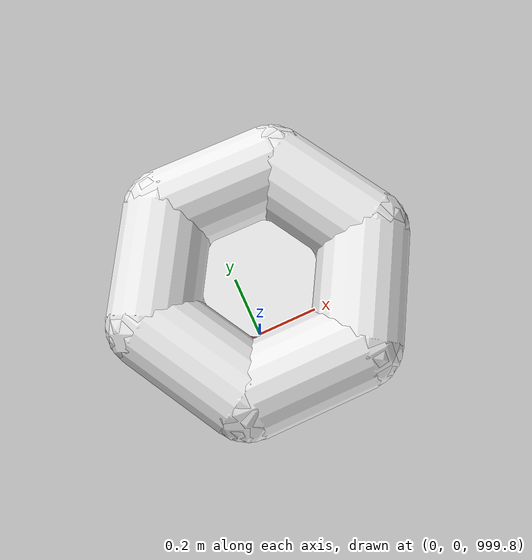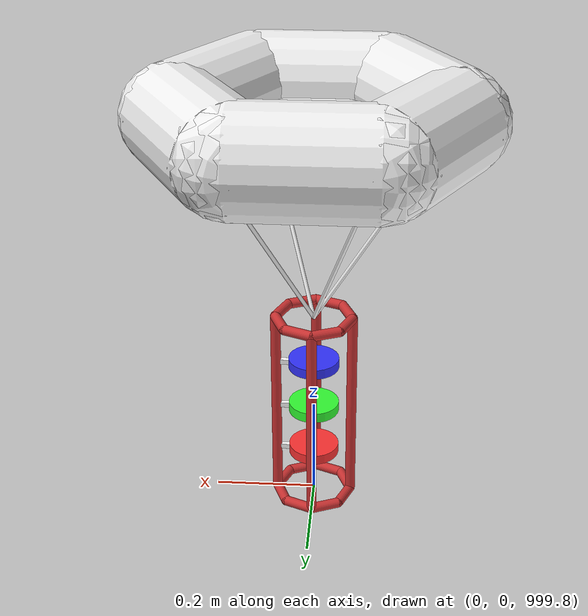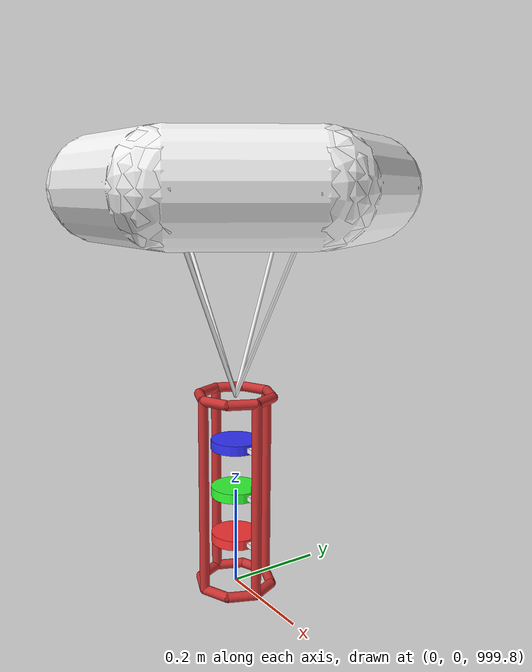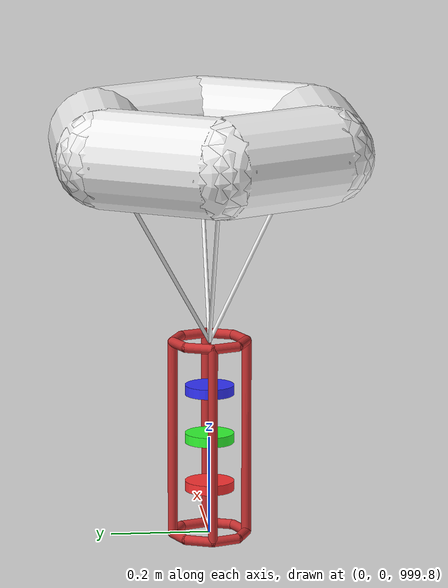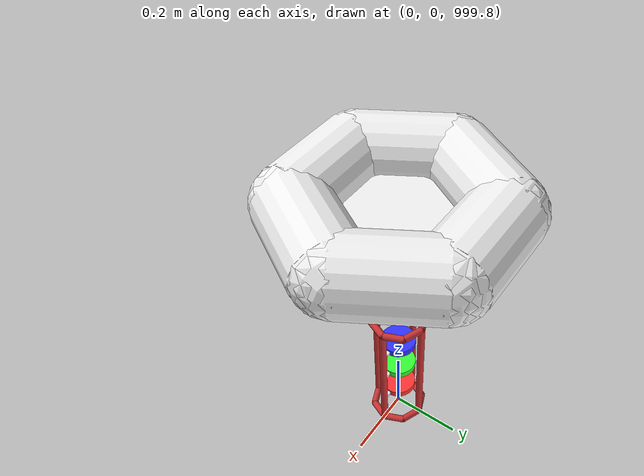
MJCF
<mujoco model="CanSatSolidChute">
  <compiler angle="degree" coordinate="local" inertiafromgeom="true"/>
  <option integrator="RK4" gravity="0 0 -9.81"/>

  <visual>
    <map znear="0.001"/>
    <quality shadowsize="4096"/>
  </visual>

  <asset>
    <texture type="skybox" builtin="gradient" rgb1="0.3 0.5 0.8" rgb2="0.1 0.2 0.4" width="512" height="3072"/>
    <material name="cansat_frame" shininess="0.7" specular="0.8" rgba="0.8 0.2 0.2 1"/>
    <material name="parachute_fabric" shininess="0.1" specular="0.1" rgba="0.95 0.95 0.95 0.9"/>
  </asset>

  <worldbody>
    <geom name="ground" type="plane" size="2000 2000 0.1" rgba="0.2 0.3 0.2 1"/>
    <light name="sun" directional="true" pos="0 -1 2" dir="0 1 -1" castshadow="true"/>

    <body name="cansat_body" pos="0 0 1000">
      <freejoint name="world_joint"/>

      <!-- CanSat "Cage" Frame -->
      <geom material="cansat_frame" type="capsule" fromto="0.075 0 -0.2 0.075 0 0.2" size="0.01"/><geom material="cansat_frame" type="capsule" fromto="-0.075 0 -0.2 -0.075 0 0.2" size="0.01"/><geom material="cansat_frame" type="capsule" fromto="0 0.075 -0.2 0 0.075 0.2" size="0.01"/><geom material="cansat_frame" type="capsule" fromto="0 -0.075 -0.2 0 -0.075 0.2" size="0.01"/><geom material="cansat_frame" type="capsule" fromto="0.075 0 0.2 0.053 0.053 0.2" size="0.01"/><geom material="cansat_frame" type="capsule" fromto="0.053 0.053 0.2 0 0.075 0.2" size="0.01"/><geom material="cansat_frame" type="capsule" fromto="0 0.075 0.2 -0.053 0.053 0.2" size="0.01"/><geom material="cansat_frame" type="capsule" fromto="-0.053 0.053 0.2 -0.075 0 0.2" size="0.01"/><geom material="cansat_frame" type="capsule" fromto="-0.075 0 0.2 -0.053 -0.053 0.2" size="0.01"/><geom material="cansat_frame" type="capsule" fromto="-0.053 -0.053 0.2 0 -0.075 0.2" size="0.01"/><geom material="cansat_frame" type="capsule" fromto="0 -0.075 0.2 0.053 -0.053 0.2" size="0.01"/><geom material="cansat_frame" type="capsule" fromto="0.053 -0.053 0.2 0.075 0 0.2" size="0.01"/><geom material="cansat_frame" type="capsule" fromto="0.075 0 -0.2 0.053 0.053 -0.2" size="0.01"/><geom material="cansat_frame" type="capsule" fromto="0.053 0.053 -0.2 0 0.075 -0.2" size="0.01"/><geom material="cansat_frame" type="capsule" fromto="0 0.075 -0.2 -0.053 0.053 -0.2" size="0.01"/><geom material="cansat_frame" type="capsule" fromto="-0.053 0.053 -0.2 -0.075 0 -0.2" size="0.01"/><geom material="cansat_frame" type="capsule" fromto="-0.075 0 -0.2 -0.053 -0.053 -0.2" size="0.01"/><geom material="cansat_frame" type="capsule" fromto="-0.053 -0.053 -0.2 0 -0.075 -0.2" size="0.01"/><geom material="cansat_frame" type="capsule" fromto="0 -0.075 -0.2 0.053 -0.053 -0.2" size="0.01"/><geom material="cansat_frame" type="capsule" fromto="0.053 -0.053 -0.2 0.075 0 -0.2" size="0.01"/>

      <!-- Reaction Wheels -->
      <body name="rw_roll" pos="0 0 -0.1"><joint name="joint_x_roll" type="hinge" axis="1 0 0"/><geom type="cylinder" size="0.05 0.01" rgba="1 0.2 0.2 1"/><geom type="box" size="0.05 0.005 0.005" pos="0.025 0 0" rgba="1 1 1 1"/></body>
      <body name="rw_pitch" pos="0 0 0"><joint name="joint_y_pitch" type="hinge" axis="0 1 0"/><geom type="cylinder" size="0.05 0.01" rgba="0.2 1 0.2 1"/><geom type="box" size="0.05 0.005 0.005" pos="0.025 0 0" rgba="1 1 1 1"/></body>
      <body name="rw_yaw" pos="0 0 0.1"><joint name="joint_z_yaw" type="hinge" axis="0 0 1"/><geom type="cylinder" size="0.05 0.01" rgba="0.2 0.2 1 1"/><geom type="box" size="0.05 0.005 0.005" pos="0.025 0 0" rgba="1 1 1 1"/></body>

      <!-- Solid Parachute model (no spill hole) -->
      <geom name="panel1" material="parachute_fabric" type="capsule" fromto="0.25 0 0.6 0.125 0.216 0.6" size="0.1" contype="0" conaffinity="0" mass="0"/><geom name="panel2" material="parachute_fabric" type="capsule" fromto="0.125 0.216 0.6 -0.125 0.216 0.6" size="0.1" contype="0" conaffinity="0" mass="0"/><geom name="panel3" material="parachute_fabric" type="capsule" fromto="-0.125 0.216 0.6 -0.25 0 0.6" size="0.1" contype="0" conaffinity="0" mass="0"/><geom name="panel4" material="parachute_fabric" type="capsule" fromto="-0.25 0 0.6 -0.125 -0.216 0.6" size="0.1" contype="0" conaffinity="0" mass="0"/><geom name="panel5" material="parachute_fabric" type="capsule" fromto="-0.125 -0.216 0.6 0.125 -0.216 0.6" size="0.1" contype="0" conaffinity="0" mass="0"/><geom name="panel6" material="parachute_fabric" type="capsule" fromto="0.125 -0.216 0.6 0.25 0 0.6" size="0.1" contype="0" conaffinity="0" mass="0"/>
      <!-- FIX: Added a central cylinder to plug the spill hole -->
      <geom name="chute_center_plug" material="parachute_fabric" type="cylinder" pos="0 0 0.6" size="0.13 0.001" contype="0" conaffinity="0" mass="0"/>

      <!-- Riser lines -->
      <geom name="riser1" material="parachute_fabric" type="capsule" fromto="0 0 0.2 0.25 0 0.6" size="0.004"/><geom name="riser2" material="parachute_fabric" type="capsule" fromto="0 0 0.2 -0.25 0 0.6" size="0.004"/><geom name="riser3" material="parachute_fabric" type="capsule" fromto="0 0 0.2 -0.125 0.216 0.6" size="0.004"/><geom name="riser4" material="parachute_fabric" type="capsule" fromto="0 0 0.2 0.125 -0.216 0.6" size="0.004"/>
    </body>
  </worldbody>

  <actuator>
    <motor name="motor_x_roll"  joint="joint_x_roll"  gear="1" ctrllimited="true" ctrlrange="-1.0 1.0"/>
    <motor name="motor_y_pitch" joint="joint_y_pitch" gear="1" ctrllimited="true" ctrlrange="-1.0 1.0"/>
    <motor name="motor_z_yaw"   joint="joint_z_yaw"   gear="1" ctrllimited="true" ctrlrange="-1.0 1.0"/>
  </actuator>
</mujoco>
